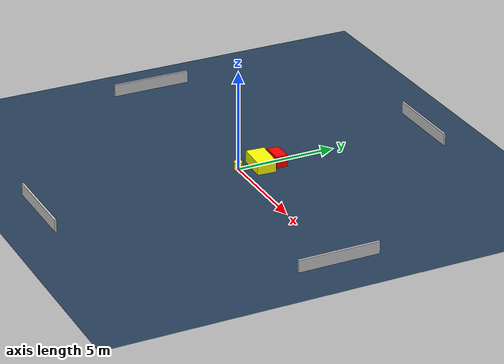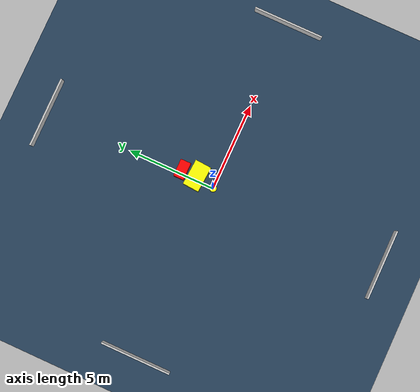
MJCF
<?xml version="1.0" ?>
<mujoco model="generated_environment">
  <option timestep="0.01" integrator="RK4" cone="elliptic"/>
  <default>
    <geom density="1"/>
  </default>
  <asset>
    <texture builtin="gradient" height="3072" name="skybox" rgb1="0.3 0.5 0.7" rgb2="0 0 0" type="skybox" width="512"/>
    <texture builtin="checker" height="300" name="groundplane" rgb1="0.2 0.3 0.4" rgb2="0.1 0.2 0.3" type="2d" width="300"/>
    <material name="groundplane" reflectance="0.2" texrepeat="5 5" texture="groundplane"/>
  </asset>
  <worldbody>
    <light dir="0 0 -1" directional="true" pos="0 0 1.5"/>
    <geom condim="3" friction="0.5 0.005 0.001" material="groundplane" name="floor" pos="0 0 0" size="0 0 0.05" type="plane"/>
    <body name="walls">
      <geom name="wall_1" condim="4" pos="-10.0 0.0 0.3" rgba="0.800000011920929 0.800000011920929 0.800000011920929 1.0" size="0.05 2.0 0.3" type="box"/>
      <geom name="wall_2" condim="4" pos="10.0 0.0 0.3" rgba="0.800000011920929 0.800000011920929 0.800000011920929 1.0" size="0.05 2.0 0.3" type="box"/>
      <geom name="wall_3" condim="4" pos="0.0 -10.0 0.3" rgba="0.800000011920929 0.800000011920929 0.800000011920929 1.0" size="2.0 0.05 0.3" type="box"/>
      <geom name="wall_4" condim="4" pos="0.0 10.0 0.3" rgba="0.800000011920929 0.800000011920929 0.800000011920929 1.0" size="2.0 0.05 0.3" type="box"/>
    </body>
    <body name="robot">
      <joint name="joint_x" type="slide" pos="0 0 0" axis="1 0 0"/>
      <joint name="joint_y" type="slide" pos="0 0 0" axis="0 1 0"/>
      <geom name="robot" type="cylinder" pos="0.0 0.0 0.2" size="0.2 0.2 0.0" mass="5.0" friction="1.0 0.005 0.0001" condim="4" rgba="1.0 1.0 0.0 1.0"/>
    </body>
    <body name="obstacle_1_movable">
      <geom name="obstacle_1_movable" condim="4" pos="0.2476397308180222 1.0673337122859061 0.3" euler="0 0 175.98239725194017" friction="0.0 0.005 0.001" rgba="1.0 1.0 0.0 1.0" size="0.7355945456857185 0.4638704932332151 0.3" type="box" mass="0.1"/>
      <joint type="free"/>
    </body>
    <body name="obstacle_2_static">
      <geom name="obstacle_2_static" condim="4" pos="0.22496652934577382 1.9426613623722335 0.3" euler="0 0 180.05300826746063" friction="0.0 0.005 0.001" rgba="1.0 0.0 0.0 1.0" size="0.4957600496733327 0.293325586698486 0.3" type="box"/>
    </body>
  </worldbody>
  <actuator>
    <motor name="actuator_x" joint="joint_x" gear="1" ctrlrange="-1 1"/>
    <motor name="actuator_y" joint="joint_y" gear="1" ctrlrange="-1 1"/>
  </actuator>
</mujoco>
